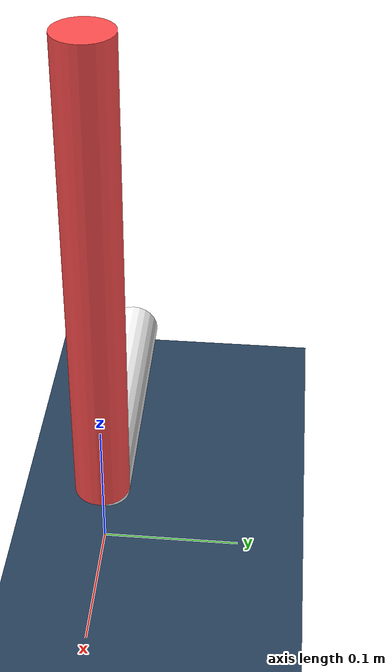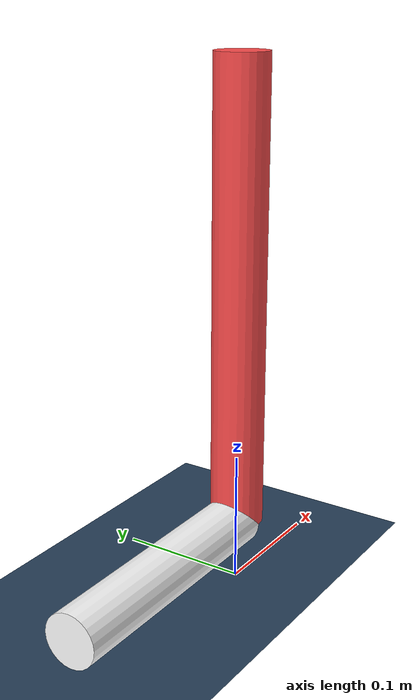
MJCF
<mujoco>
  <option timestep="0.001"/>

  <visual>
    <headlight diffuse="0.6 0.6 0.6" ambient="0.3 0.3 0.3" specular="0 0 0" />
    <rgba haze="0.15 0.25 0.35 1" />
    <global azimuth="160" elevation="-20" />
  </visual>

  <asset>
    <texture type="skybox" builtin="gradient" rgb1="0.3 0.5 0.7" rgb2="0 0 0" width="512" height="3072" />
    <texture type="2d" name="groundplane" builtin="checker" mark="edge" rgb1="0.2 0.3 0.4" rgb2="0.1 0.2 0.3" markrgb="0.8 0.8 0.8" width="300" height="300" />
    <material name="groundplane" texture="groundplane" texuniform="true" texrepeat="5 5" reflectance="0.2" />
  </asset>

  <default>
    <joint type="hinge" axis="0 -1 0" frictionloss="0.001" armature="0.005" />
    <geom type="cylinder" size="0.02" />
    <default class="visual">
      <geom density="0" contype="0" conaffinity="0" group="1" />
    </default>
    <default class="collision">
      <geom density="2700" contype="2" conaffinity="2" rgba="0.5 0.5 0.5 0.3" group="2" />
    </default>
  </default>

  <worldbody>
    <light pos="0 0 3.5" dir="0 0 -1" directional="true" />
    <geom name="floor" size="0 0 0.05" contype="2" conaffinity="2" pos="0 0 0" type="plane" material="groundplane" />
    <camera name="fixed" pos="0 -1 0" xyaxes="1 0 0 0 0 1" />

     <body name="toplink" pos="0 0 .4">
        <joint name="root"/>
        <geom name="toplink_visual" class="visual" fromto="0 0 0 0 0 -0.35" rgba="1 0.3 0.3 1"/>
        <geom name="toplink_collision" class="collision" fromto="0 0 0 0 0 -.35"/>

      <body name="bottomlink" pos="0 0 -.35" quat="0 0.7071068 0 0.7071068">
        <joint name="actjoint" type="hinge" axis="0 -1 0" frictionloss="0.001" armature="0.005"/>
        <geom name="bottomlink_visual" class="visual" fromto="0 0 0 0 0 -.2" rgba="1 1 1 1"/>
        <geom name="bottomlink_collision" class="collision" fromto="0 0 0 0 0 -.2"/>
        <site name="force_site" pos="0.0 0.0 0.0" size="0.01"/>
      </body>

    </body>
  </worldbody>

  <contact>
    <pair geom1="toplink_collision" geom2="bottomlink_collision"/>
  </contact>

  <sensor>
    <force name="force_sensor" site="force_site" />
  </sensor>

  <actuator>
    <motor name="rs04joint" joint="actjoint"/>
  </actuator>
</mujoco>
